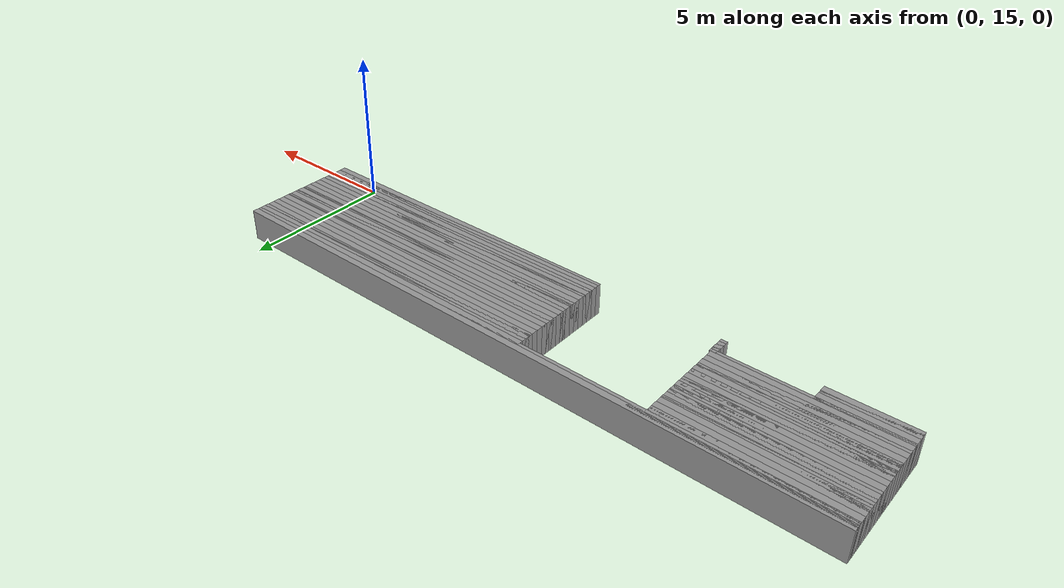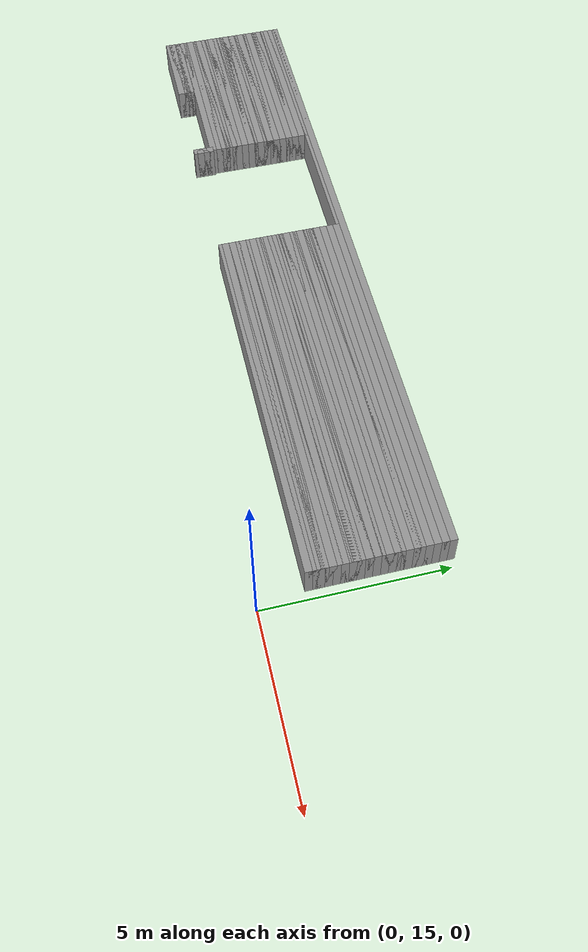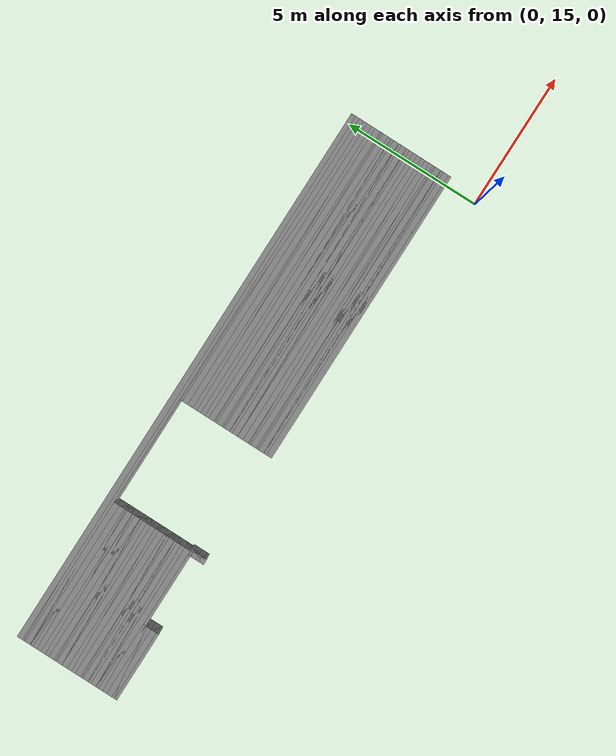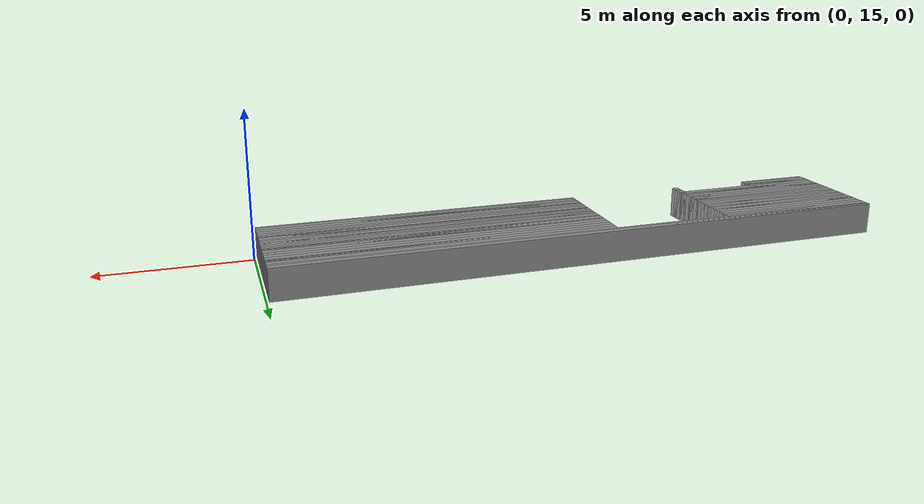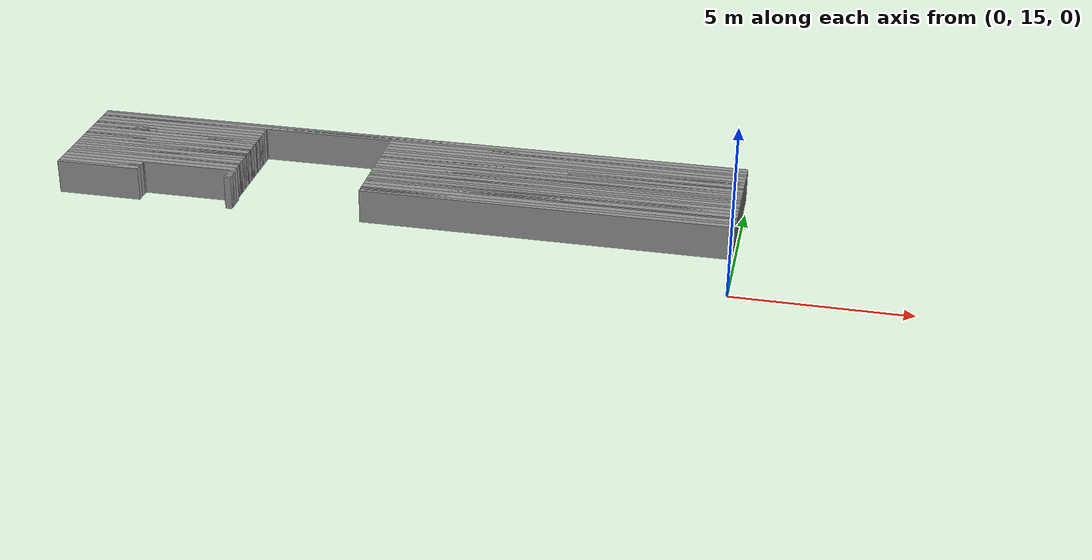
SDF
<sdf version="1.6">
 <world name="GridMap">
  <model name="GridMap">
   <link name="Wall_(53.5,163.0)">
    <collision name="Wall_(53.5,163.0)_Collision">
     <geometry><box><size>10.7 0.2 1.0</size></box></geometry>
     <pose>-5.35 16.3 0.5 0 -0 0</pose>
    </collision>
    <visual name="Wall_(53.5,163.0)_Visual">
     <geometry><box><size>10.7 0.2 1.0</size></box></geometry>
     <pose>-5.35 16.3 0.5 0 -0 0</pose>
     <material>
      <script><uri>file://media/materials/scripts/gazebo.material</uri><name>Gazebo/Grey</name></script>
      <ambient>1 1 1 1</ambient>
     </material>
     <meta><layer>0</layer></meta>
    </visual>
    <pose>0 0 0.5 0 -0 0</pose>
   </link>
   <link name="Wall_(146.5,163.0)">
    <collision name="Wall_(146.5,163.0)_Collision">
     <geometry><box><size>0.2 0.2 1.0</size></box></geometry>
     <pose>-14.65 16.3 0.5 0 -0 0</pose>
    </collision>
    <visual name="Wall_(146.5,163.0)_Visual">
     <geometry><box><size>0.2 0.2 1.0</size></box></geometry>
     <pose>-14.65 16.3 0.5 0 -0 0</pose>
     <material>
      <script><uri>file://media/materials/scripts/gazebo.material</uri><name>Gazebo/Grey</name></script>
      <ambient>1 1 1 1</ambient>
     </material>
     <meta><layer>0</layer></meta>
    </visual>
    <pose>0 0 0.5 0 -0 0</pose>
   </link>
   <link name="Wall_(186.5,163.0)">
    <collision name="Wall_(186.5,163.0)_Collision">
     <geometry><box><size>2.5 0.2 1.0</size></box></geometry>
     <pose>-18.65 16.3 0.5 0 -0 0</pose>
    </collision>
    <visual name="Wall_(186.5,163.0)_Visual">
     <geometry><box><size>2.5 0.2 1.0</size></box></geometry>
     <pose>-18.65 16.3 0.5 0 -0 0</pose>
     <material>
      <script><uri>file://media/materials/scripts/gazebo.material</uri><name>Gazebo/Grey</name></script>
      <ambient>1 1 1 1</ambient>
     </material>
     <meta><layer>0</layer></meta>
    </visual>
    <pose>0 0 0.5 0 -0 0</pose>
   </link>
   <link name="Wall_(53.5,164.0)">
    <collision name="Wall_(53.5,164.0)_Collision">
     <geometry><box><size>10.7 0.2 1.0</size></box></geometry>
     <pose>-5.35 16.4 0.5 0 -0 0</pose>
    </collision>
    <visual name="Wall_(53.5,164.0)_Visual">
     <geometry><box><size>10.7 0.2 1.0</size></box></geometry>
     <pose>-5.35 16.4 0.5 0 -0 0</pose>
     <material>
      <script><uri>file://media/materials/scripts/gazebo.material</uri><name>Gazebo/Grey</name></script>
      <ambient>1 1 1 1</ambient>
     </material>
     <meta><layer>0</layer></meta>
    </visual>
    <pose>0 0 0.5 0 -0 0</pose>
   </link>
   <link name="Wall_(146.5,164.0)">
    <collision name="Wall_(146.5,164.0)_Collision">
     <geometry><box><size>0.2 0.2 1.0</size></box></geometry>
     <pose>-14.65 16.4 0.5 0 -0 0</pose>
    </collision>
    <visual name="Wall_(146.5,164.0)_Visual">
     <geometry><box><size>0.2 0.2 1.0</size></box></geometry>
     <pose>-14.65 16.4 0.5 0 -0 0</pose>
     <material>
      <script><uri>file://media/materials/scripts/gazebo.material</uri><name>Gazebo/Grey</name></script>
      <ambient>1 1 1 1</ambient>
     </material>
     <meta><layer>0</layer></meta>
    </visual>
    <pose>0 0 0.5 0 -0 0</pose>
   </link>
   <link name="Wall_(186.5,164.0)">
    <collision name="Wall_(186.5,164.0)_Collision">
     <geometry><box><size>2.5 0.2 1.0</size></box></geometry>
     <pose>-18.65 16.4 0.5 0 -0 0</pose>
    </collision>
    <visual name="Wall_(186.5,164.0)_Visual">
     <geometry><box><size>2.5 0.2 1.0</size></box></geometry>
     <pose>-18.65 16.4 0.5 0 -0 0</pose>
     <material>
      <script><uri>file://media/materials/scripts/gazebo.material</uri><name>Gazebo/Grey</name></script>
      <ambient>1 1 1 1</ambient>
     </material>
     <meta><layer>0</layer></meta>
    </visual>
    <pose>0 0 0.5 0 -0 0</pose>
   </link>
   <link name="Wall_(53.5,165.0)">
    <collision name="Wall_(53.5,165.0)_Collision">
     <geometry><box><size>10.7 0.2 1.0</size></box></geometry>
     <pose>-5.35 16.5 0.5 0 -0 0</pose>
    </collision>
    <visual name="Wall_(53.5,165.0)_Visual">
     <geometry><box><size>10.7 0.2 1.0</size></box></geometry>
     <pose>-5.35 16.5 0.5 0 -0 0</pose>
     <material>
      <script><uri>file://media/materials/scripts/gazebo.material</uri><name>Gazebo/Grey</name></script>
      <ambient>1 1 1 1</ambient>
     </material>
     <meta><layer>0</layer></meta>
    </visual>
    <pose>0 0 0.5 0 -0 0</pose>
   </link>
   <link name="Wall_(146.5,165.0)">
    <collision name="Wall_(146.5,165.0)_Collision">
     <geometry><box><size>0.2 0.2 1.0</size></box></geometry>
     <pose>-14.65 16.5 0.5 0 -0 0</pose>
    </collision>
    <visual name="Wall_(146.5,165.0)_Visual">
     <geometry><box><size>0.2 0.2 1.0</size></box></geometry>
     <pose>-14.65 16.5 0.5 0 -0 0</pose>
     <material>
      <script><uri>file://media/materials/scripts/gazebo.material</uri><name>Gazebo/Grey</name></script>
      <ambient>1 1 1 1</ambient>
     </material>
     <meta><layer>0</layer></meta>
    </visual>
    <pose>0 0 0.5 0 -0 0</pose>
   </link>
   <link name="Wall_(186.5,165.0)">
    <collision name="Wall_(186.5,165.0)_Collision">
     <geometry><box><size>2.5 0.2 1.0</size></box></geometry>
     <pose>-18.65 16.5 0.5 0 -0 0</pose>
    </collision>
    <visual name="Wall_(186.5,165.0)_Visual">
     <geometry><box><size>2.5 0.2 1.0</size></box></geometry>
     <pose>-18.65 16.5 0.5 0 -0 0</pose>
     <material>
      <script><uri>file://media/materials/scripts/gazebo.material</uri><name>Gazebo/Grey</name></script>
      <ambient>1 1 1 1</ambient>
     </material>
     <meta><layer>0</layer></meta>
    </visual>
    <pose>0 0 0.5 0 -0 0</pose>
   </link>
   <link name="Wall_(53.5,166.0)">
    <collision name="Wall_(53.5,166.0)_Collision">
     <geometry><box><size>10.7 0.2 1.0</size></box></geometry>
     <pose>-5.35 16.6 0.5 0 -0 0</pose>
    </collision>
    <visual name="Wall_(53.5,166.0)_Visual">
     <geometry><box><size>10.7 0.2 1.0</size></box></geometry>
     <pose>-5.35 16.6 0.5 0 -0 0</pose>
     <material>
      <script><uri>file://media/materials/scripts/gazebo.material</uri><name>Gazebo/Grey</name></script>
      <ambient>1 1 1 1</ambient>
     </material>
     <meta><layer>0</layer></meta>
    </visual>
    <pose>0 0 0.5 0 -0 0</pose>
   </link>
   <link name="Wall_(146.5,166.0)">
    <collision name="Wall_(146.5,166.0)_Collision">
     <geometry><box><size>0.2 0.2 1.0</size></box></geometry>
     <pose>-14.65 16.6 0.5 0 -0 0</pose>
    </collision>
    <visual name="Wall_(146.5,166.0)_Visual">
     <geometry><box><size>0.2 0.2 1.0</size></box></geometry>
     <pose>-14.65 16.6 0.5 0 -0 0</pose>
     <material>
      <script><uri>file://media/materials/scripts/gazebo.material</uri><name>Gazebo/Grey</name></script>
      <ambient>1 1 1 1</ambient>
     </material>
     <meta><layer>0</layer></meta>
    </visual>
    <pose>0 0 0.5 0 -0 0</pose>
   </link>
   <link name="Wall_(186.5,166.0)">
    <collision name="Wall_(186.5,166.0)_Collision">
     <geometry><box><size>2.5 0.2 1.0</size></box></geometry>
     <pose>-18.65 16.6 0.5 0 -0 0</pose>
    </collision>
    <visual name="Wall_(186.5,166.0)_Visual">
     <geometry><box><size>2.5 0.2 1.0</size></box></geometry>
     <pose>-18.65 16.6 0.5 0 -0 0</pose>
     <material>
      <script><uri>file://media/materials/scripts/gazebo.material</uri><name>Gazebo/Grey</name></script>
      <ambient>1 1 1 1</ambient>
     </material>
     <meta><layer>0</layer></meta>
    </visual>
    <pose>0 0 0.5 0 -0 0</pose>
   </link>
   <link name="Wall_(53.5,167.0)">
    <collision name="Wall_(53.5,167.0)_Collision">
     <geometry><box><size>10.7 0.2 1.0</size></box></geometry>
     <pose>-5.35 16.7 0.5 0 -0 0</pose>
    </collision>
    <visual name="Wall_(53.5,167.0)_Visual">
     <geometry><box><size>10.7 0.2 1.0</size></box></geometry>
     <pose>-5.35 16.7 0.5 0 -0 0</pose>
     <material>
      <script><uri>file://media/materials/scripts/gazebo.material</uri><name>Gazebo/Grey</name></script>
      <ambient>1 1 1 1</ambient>
     </material>
     <meta><layer>0</layer></meta>
    </visual>
    <pose>0 0 0.5 0 -0 0</pose>
   </link>
   <link name="Wall_(146.5,167.0)">
    <collision name="Wall_(146.5,167.0)_Collision">
     <geometry><box><size>0.2 0.2 1.0</size></box></geometry>
     <pose>-14.65 16.7 0.5 0 -0 0</pose>
    </collision>
    <visual name="Wall_(146.5,167.0)_Visual">
     <geometry><box><size>0.2 0.2 1.0</size></box></geometry>
     <pose>-14.65 16.7 0.5 0 -0 0</pose>
     <material>
      <script><uri>file://media/materials/scripts/gazebo.material</uri><name>Gazebo/Grey</name></script>
      <ambient>1 1 1 1</ambient>
     </material>
     <meta><layer>0</layer></meta>
    </visual>
    <pose>0 0 0.5 0 -0 0</pose>
   </link>
   <link name="Wall_(186.5,167.0)">
    <collision name="Wall_(186.5,167.0)_Collision">
     <geometry><box><size>2.5 0.2 1.0</size></box></geometry>
     <pose>-18.65 16.7 0.5 0 -0 0</pose>
    </collision>
    <visual name="Wall_(186.5,167.0)_Visual">
     <geometry><box><size>2.5 0.2 1.0</size></box></geometry>
     <pose>-18.65 16.7 0.5 0 -0 0</pose>
     <material>
      <script><uri>file://media/materials/scripts/gazebo.material</uri><name>Gazebo/Grey</name></script>
      <ambient>1 1 1 1</ambient>
     </material>
     <meta><layer>0</layer></meta>
    </visual>
    <pose>0 0 0.5 0 -0 0</pose>
   </link>
   <link name="Wall_(53.5,168.0)">
    <collision name="Wall_(53.5,168.0)_Collision">
     <geometry><box><size>10.7 0.2 1.0</size></box></geometry>
     <pose>-5.35 16.8 0.5 0 -0 0</pose>
    </collision>
    <visual name="Wall_(53.5,168.0)_Visual">
     <geometry><box><size>10.7 0.2 1.0</size></box></geometry>
     <pose>-5.35 16.8 0.5 0 -0 0</pose>
     <material>
      <script><uri>file://media/materials/scripts/gazebo.material</uri><name>Gazebo/Grey</name></script>
      <ambient>1 1 1 1</ambient>
     </material>
     <meta><layer>0</layer></meta>
    </visual>
    <pose>0 0 0.5 0 -0 0</pose>
   </link>
   <link name="Wall_(172.5,168.0)">
    <collision name="Wall_(172.5,168.0)_Collision">
     <geometry><box><size>5.3 0.2 1.0</size></box></geometry>
     <pose>-17.25 16.8 0.5 0 -0 0</pose>
    </collision>
    <visual name="Wall_(172.5,168.0)_Visual">
     <geometry><box><size>5.3 0.2 1.0</size></box></geometry>
     <pose>-17.25 16.8 0.5 0 -0 0</pose>
     <material>
      <script><uri>file://media/materials/scripts/gazebo.material</uri><name>Gazebo/Grey</name></script>
      <ambient>1 1 1 1</ambient>
     </material>
     <meta><layer>0</layer></meta>
    </visual>
    <pose>0 0 0.5 0 -0 0</pose>
   </link>
   <link name="Wall_(53.5,169.0)">
    <collision name="Wall_(53.5,169.0)_Collision">
     <geometry><box><size>10.7 0.2 1.0</size></box></geometry>
     <pose>-5.35 16.9 0.5 0 -0 0</pose>
    </collision>
    <visual name="Wall_(53.5,169.0)_Visual">
     <geometry><box><size>10.7 0.2 1.0</size></box></geometry>
     <pose>-5.35 16.9 0.5 0 -0 0</pose>
     <material>
      <script><uri>file://media/materials/scripts/gazebo.material</uri><name>Gazebo/Grey</name></script>
      <ambient>1 1 1 1</ambient>
     </material>
     <meta><layer>0</layer></meta>
    </visual>
    <pose>0 0 0.5 0 -0 0</pose>
   </link>
   <link name="Wall_(172.5,169.0)">
    <collision name="Wall_(172.5,169.0)_Collision">
     <geometry><box><size>5.3 0.2 1.0</size></box></geometry>
     <pose>-17.25 16.9 0.5 0 -0 0</pose>
    </collision>
    <visual name="Wall_(172.5,169.0)_Visual">
     <geometry><box><size>5.3 0.2 1.0</size></box></geometry>
     <pose>-17.25 16.9 0.5 0 -0 0</pose>
     <material>
      <script><uri>file://media/materials/scripts/gazebo.material</uri><name>Gazebo/Grey</name></script>
      <ambient>1 1 1 1</ambient>
     </material>
     <meta><layer>0</layer></meta>
    </visual>
    <pose>0 0 0.5 0 -0 0</pose>
   </link>
   <link name="Wall_(53.5,170.0)">
    <collision name="Wall_(53.5,170.0)_Collision">
     <geometry><box><size>10.7 0.2 1.0</size></box></geometry>
     <pose>-5.35 17.0 0.5 0 -0 0</pose>
    </collision>
    <visual name="Wall_(53.5,170.0)_Visual">
     <geometry><box><size>10.7 0.2 1.0</size></box></geometry>
     <pose>-5.35 17.0 0.5 0 -0 0</pose>
     <material>
      <script><uri>file://media/materials/scripts/gazebo.material</uri><name>Gazebo/Grey</name></script>
      <ambient>1 1 1 1</ambient>
     </material>
     <meta><layer>0</layer></meta>
    </visual>
    <pose>0 0 0.5 0 -0 0</pose>
   </link>
   <link name="Wall_(172.5,170.0)">
    <collision name="Wall_(172.5,170.0)_Collision">
     <geometry><box><size>5.3 0.2 1.0</size></box></geometry>
     <pose>-17.25 17.0 0.5 0 -0 0</pose>
    </collision>
    <visual name="Wall_(172.5,170.0)_Visual">
     <geometry><box><size>5.3 0.2 1.0</size></box></geometry>
     <pose>-17.25 17.0 0.5 0 -0 0</pose>
     <material>
      <script><uri>file://media/materials/scripts/gazebo.material</uri><name>Gazebo/Grey</name></script>
      <ambient>1 1 1 1</ambient>
     </material>
     <meta><layer>0</layer></meta>
    </visual>
    <pose>0 0 0.5 0 -0 0</pose>
   </link>
   <link name="Wall_(53.5,171.0)">
    <collision name="Wall_(53.5,171.0)_Collision">
     <geometry><box><size>10.7 0.2 1.0</size></box></geometry>
     <pose>-5.35 17.1 0.5 0 -0 0</pose>
    </collision>
    <visual name="Wall_(53.5,171.0)_Visual">
     <geometry><box><size>10.7 0.2 1.0</size></box></geometry>
     <pose>-5.35 17.1 0.5 0 -0 0</pose>
     <material>
      <script><uri>file://media/materials/scripts/gazebo.material</uri><name>Gazebo/Grey</name></script>
      <ambient>1 1 1 1</ambient>
     </material>
     <meta><layer>0</layer></meta>
    </visual>
    <pose>0 0 0.5 0 -0 0</pose>
   </link>
   <link name="Wall_(172.5,171.0)">
    <collision name="Wall_(172.5,171.0)_Collision">
     <geometry><box><size>5.3 0.2 1.0</size></box></geometry>
     <pose>-17.25 17.1 0.5 0 -0 0</pose>
    </collision>
    <visual name="Wall_(172.5,171.0)_Visual">
     <geometry><box><size>5.3 0.2 1.0</size></box></geometry>
     <pose>-17.25 17.1 0.5 0 -0 0</pose>
     <material>
      <script><uri>file://media/materials/scripts/gazebo.material</uri><name>Gazebo/Grey</name></script>
      <ambient>1 1 1 1</ambient>
     </material>
     <meta><layer>0</layer></meta>
    </visual>
    <pose>0 0 0.5 0 -0 0</pose>
   </link>
   <link name="Wall_(53.5,172.0)">
    <collision name="Wall_(53.5,172.0)_Collision">
     <geometry><box><size>10.7 0.2 1.0</size></box></geometry>
     <pose>-5.35 17.2 0.5 0 -0 0</pose>
    </collision>
    <visual name="Wall_(53.5,172.0)_Visual">
     <geometry><box><size>10.7 0.2 1.0</size></box></geometry>
     <pose>-5.35 17.2 0.5 0 -0 0</pose>
     <material>
      <script><uri>file://media/materials/scripts/gazebo.material</uri><name>Gazebo/Grey</name></script>
      <ambient>1 1 1 1</ambient>
     </material>
     <meta><layer>0</layer></meta>
    </visual>
    <pose>0 0 0.5 0 -0 0</pose>
   </link>
   <link name="Wall_(172.5,172.0)">
    <collision name="Wall_(172.5,172.0)_Collision">
     <geometry><box><size>5.3 0.2 1.0</size></box></geometry>
     <pose>-17.25 17.2 0.5 0 -0 0</pose>
    </collision>
    <visual name="Wall_(172.5,172.0)_Visual">
     <geometry><box><size>5.3 0.2 1.0</size></box></geometry>
     <pose>-17.25 17.2 0.5 0 -0 0</pose>
     <material>
      <script><uri>file://media/materials/scripts/gazebo.material</uri><name>Gazebo/Grey</name></script>
      <ambient>1 1 1 1</ambient>
     </material>
     <meta><layer>0</layer></meta>
    </visual>
    <pose>0 0 0.5 0 -0 0</pose>
   </link>
   <link name="Wall_(53.5,173.0)">
    <collision name="Wall_(53.5,173.0)_Collision">
     <geometry><box><size>10.7 0.2 1.0</size></box></geometry>
     <pose>-5.35 17.3 0.5 0 -0 0</pose>
    </collision>
    <visual name="Wall_(53.5,173.0)_Visual">
     <geometry><box><size>10.7 0.2 1.0</size></box></geometry>
     <pose>-5.35 17.3 0.5 0 -0 0</pose>
     <material>
      <script><uri>file://media/materials/scripts/gazebo.material</uri><name>Gazebo/Grey</name></script>
      <ambient>1 1 1 1</ambient>
     </material>
     <meta><layer>0</layer></meta>
    </visual>
    <pose>0 0 0.5 0 -0 0</pose>
   </link>
   <link name="Wall_(172.5,173.0)">
    <collision name="Wall_(172.5,173.0)_Collision">
     <geometry><box><size>5.3 0.2 1.0</size></box></geometry>
     <pose>-17.25 17.3 0.5 0 -0 0</pose>
    </collision>
    <visual name="Wall_(172.5,173.0)_Visual">
     <geometry><box><size>5.3 0.2 1.0</size></box></geometry>
     <pose>-17.25 17.3 0.5 0 -0 0</pose>
     <material>
      <script><uri>file://media/materials/scripts/gazebo.material</uri><name>Gazebo/Grey</name></script>
      <ambient>1 1 1 1</ambient>
     </material>
     <meta><layer>0</layer></meta>
    </visual>
    <pose>0 0 0.5 0 -0 0</pose>
   </link>
   <link name="Wall_(53.5,174.0)">
    <collision name="Wall_(53.5,174.0)_Collision">
     <geometry><box><size>10.7 0.2 1.0</size></box></geometry>
     <pose>-5.35 17.4 0.5 0 -0 0</pose>
    </collision>
    <visual name="Wall_(53.5,174.0)_Visual">
     <geometry><box><size>10.7 0.2 1.0</size></box></geometry>
     <pose>-5.35 17.4 0.5 0 -0 0</pose>
     <material>
      <script><uri>file://media/materials/scripts/gazebo.material</uri><name>Gazebo/Grey</name></script>
      <ambient>1 1 1 1</ambient>
     </material>
     <meta><layer>0</layer></meta>
    </visual>
    <pose>0 0 0.5 0 -0 0</pose>
   </link>
   <link name="Wall_(172.5,174.0)">
    <collision name="Wall_(172.5,174.0)_Collision">
     <geometry><box><size>5.3 0.2 1.0</size></box></geometry>
     <pose>-17.25 17.4 0.5 0 -0 0</pose>
    </collision>
    <visual name="Wall_(172.5,174.0)_Visual">
     <geometry><box><size>5.3 0.2 1.0</size></box></geometry>
     <pose>-17.25 17.4 0.5 0 -0 0</pose>
     <material>
      <script><uri>file://media/materials/scripts/gazebo.material</uri><name>Gazebo/Grey</name></script>
      <ambient>1 1 1 1</ambient>
     </material>
     <meta><layer>0</layer></meta>
    </visual>
    <pose>0 0 0.5 0 -0 0</pose>
   </link>
   <link name="Wall_(53.5,175.0)">
    <collision name="Wall_(53.5,175.0)_Collision">
     <geometry><box><size>10.7 0.2 1.0</size></box></geometry>
     <pose>-5.35 17.5 0.5 0 -0 0</pose>
    </collision>
    <visual name="Wall_(53.5,175.0)_Visual">
     <geometry><box><size>10.7 0.2 1.0</size></box></geometry>
     <pose>-5.35 17.5 0.5 0 -0 0</pose>
     <material>
      <script><uri>file://media/materials/scripts/gazebo.material</uri><name>Gazebo/Grey</name></script>
      <ambient>1 1 1 1</ambient>
     </material>
     <meta><layer>0</layer></meta>
    </visual>
    <pose>0 0 0.5 0 -0 0</pose>
   </link>
   <link name="Wall_(172.5,175.0)">
    <collision name="Wall_(172.5,175.0)_Collision">
     <geometry><box><size>5.3 0.2 1.0</size></box></geometry>
     <pose>-17.25 17.5 0.5 0 -0 0</pose>
    </collision>
    <visual name="Wall_(172.5,175.0)_Visual">
     <geometry><box><size>5.3 0.2 1.0</size></box></geometry>
     <pose>-17.25 17.5 0.5 0 -0 0</pose>
     <material>
      <script><uri>file://media/materials/scripts/gazebo.material</uri><name>Gazebo/Grey</name></script>
      <ambient>1 1 1 1</ambient>
     </material>
     <meta><layer>0</layer></meta>
    </visual>
    <pose>0 0 0.5 0 -0 0</pose>
   </link>
   <link name="Wall_(53.5,176.0)">
    <collision name="Wall_(53.5,176.0)_Collision">
     <geometry><box><size>10.7 0.2 1.0</size></box></geometry>
     <pose>-5.35 17.6 0.5 0 -0 0</pose>
    </collision>
    <visual name="Wall_(53.5,176.0)_Visual">
     <geometry><box><size>10.7 0.2 1.0</size></box></geometry>
     <pose>-5.35 17.6 0.5 0 -0 0</pose>
     <material>
      <script><uri>file://media/materials/scripts/gazebo.material</uri><name>Gazebo/Grey</name></script>
      <ambient>1 1 1 1</ambient>
     </material>
     <meta><layer>0</layer></meta>
    </visual>
    <pose>0 0 0.5 0 -0 0</pose>
   </link>
   <link name="Wall_(172.5,176.0)">
    <collision name="Wall_(172.5,176.0)_Collision">
     <geometry><box><size>5.3 0.2 1.0</size></box></geometry>
     <pose>-17.25 17.6 0.5 0 -0 0</pose>
    </collision>
    <visual name="Wall_(172.5,176.0)_Visual">
     <geometry><box><size>5.3 0.2 1.0</size></box></geometry>
     <pose>-17.25 17.6 0.5 0 -0 0</pose>
     <material>
      <script><uri>file://media/materials/scripts/gazebo.material</uri><name>Gazebo/Grey</name></script>
      <ambient>1 1 1 1</ambient>
     </material>
     <meta><layer>0</layer></meta>
    </visual>
    <pose>0 0 0.5 0 -0 0</pose>
   </link>
   <link name="Wall_(53.5,177.0)">
    <collision name="Wall_(53.5,177.0)_Collision">
     <geometry><box><size>10.7 0.2 1.0</size></box></geometry>
     <pose>-5.35 17.7 0.5 0 -0 0</pose>
    </collision>
    <visual name="Wall_(53.5,177.0)_Visual">
     <geometry><box><size>10.7 0.2 1.0</size></box></geometry>
     <pose>-5.35 17.7 0.5 0 -0 0</pose>
     <material>
      <script><uri>file://media/materials/scripts/gazebo.material</uri><name>Gazebo/Grey</name></script>
      <ambient>1 1 1 1</ambient>
     </material>
     <meta><layer>0</layer></meta>
    </visual>
    <pose>0 0 0.5 0 -0 0</pose>
   </link>
   <link name="Wall_(172.5,177.0)">
    <collision name="Wall_(172.5,177.0)_Collision">
     <geometry><box><size>5.3 0.2 1.0</size></box></geometry>
     <pose>-17.25 17.7 0.5 0 -0 0</pose>
    </collision>
    <visual name="Wall_(172.5,177.0)_Visual">
     <geometry><box><size>5.3 0.2 1.0</size></box></geometry>
     <pose>-17.25 17.7 0.5 0 -0 0</pose>
     <material>
      <script><uri>file://media/materials/scripts/gazebo.material</uri><name>Gazebo/Grey</name></script>
      <ambient>1 1 1 1</ambient>
     </material>
     <meta><layer>0</layer></meta>
    </visual>
    <pose>0 0 0.5 0 -0 0</pose>
   </link>
   <link name="Wall_(53.5,178.0)">
    <collision name="Wall_(53.5,178.0)_Collision">
     <geometry><box><size>10.7 0.2 1.0</size></box></geometry>
     <pose>-5.35 17.8 0.5 0 -0 0</pose>
    </collision>
    <visual name="Wall_(53.5,178.0)_Visual">
     <geometry><box><size>10.7 0.2 1.0</size></box></geometry>
     <pose>-5.35 17.8 0.5 0 -0 0</pose>
     <material>
      <script><uri>file://media/materials/scripts/gazebo.material</uri><name>Gazebo/Grey</name></script>
      <ambient>1 1 1 1</ambient>
     </material>
     <meta><layer>0</layer></meta>
    </visual>
    <pose>0 0 0.5 0 -0 0</pose>
   </link>
   <link name="Wall_(172.5,178.0)">
    <collision name="Wall_(172.5,178.0)_Collision">
     <geometry><box><size>5.3 0.2 1.0</size></box></geometry>
     <pose>-17.25 17.8 0.5 0 -0 0</pose>
    </collision>
    <visual name="Wall_(172.5,178.0)_Visual">
     <geometry><box><size>5.3 0.2 1.0</size></box></geometry>
     <pose>-17.25 17.8 0.5 0 -0 0</pose>
     <material>
      <script><uri>file://media/materials/scripts/gazebo.material</uri><name>Gazebo/Grey</name></script>
      <ambient>1 1 1 1</ambient>
     </material>
     <meta><layer>0</layer></meta>
    </visual>
    <pose>0 0 0.5 0 -0 0</pose>
   </link>
   <link name="Wall_(53.5,179.0)">
    <collision name="Wall_(53.5,179.0)_Collision">
     <geometry><box><size>10.7 0.2 1.0</size></box></geometry>
     <pose>-5.35 17.9 0.5 0 -0 0</pose>
    </collision>
    <visual name="Wall_(53.5,179.0)_Visual">
     <geometry><box><size>10.7 0.2 1.0</size></box></geometry>
     <pose>-5.35 17.9 0.5 0 -0 0</pose>
     <material>
      <script><uri>file://media/materials/scripts/gazebo.material</uri><name>Gazebo/Grey</name></script>
      <ambient>1 1 1 1</ambient>
     </material>
     <meta><layer>0</layer></meta>
    </visual>
    <pose>0 0 0.5 0 -0 0</pose>
   </link>
   <link name="Wall_(172.5,179.0)">
    <collision name="Wall_(172.5,179.0)_Collision">
     <geometry><box><size>5.3 0.2 1.0</size></box></geometry>
     <pose>-17.25 17.9 0.5 0 -0 0</pose>
    </collision>
    <visual name="Wall_(172.5,179.0)_Visual">
     <geometry><box><size>5.3 0.2 1.0</size></box></geometry>
     <pose>-17.25 17.9 0.5 0 -0 0</pose>
     <material>
      <script><uri>file://media/materials/scripts/gazebo.material</uri><name>Gazebo/Grey</name></script>
      <ambient>1 1 1 1</ambient>
     </material>
     <meta><layer>0</layer></meta>
    </visual>
    <pose>0 0 0.5 0 -0 0</pose>
   </link>
   <link name="Wall_(53.5,180.0)">
    <collision name="Wall_(53.5,180.0)_Collision">
     <geometry><box><size>10.7 0.2 1.0</size></box></geometry>
     <pose>-5.35 18.0 0.5 0 -0 0</pose>
    </collision>
    <visual name="Wall_(53.5,180.0)_Visual">
     <geometry><box><size>10.7 0.2 1.0</size></box></geometry>
     <pose>-5.35 18.0 0.5 0 -0 0</pose>
     <material>
      <script><uri>file://media/materials/scripts/gazebo.material</uri><name>Gazebo/Grey</name></script>
      <ambient>1 1 1 1</ambient>
     </material>
     <meta><layer>0</layer></meta>
    </visual>
    <pose>0 0 0.5 0 -0 0</pose>
   </link>
   <link name="Wall_(172.5,180.0)">
    <collision name="Wall_(172.5,180.0)_Collision">
     <geometry><box><size>5.3 0.2 1.0</size></box></geometry>
     <pose>-17.25 18.0 0.5 0 -0 0</pose>
    </collision>
    <visual name="Wall_(172.5,180.0)_Visual">
     <geometry><box><size>5.3 0.2 1.0</size></box></geometry>
     <pose>-17.25 18.0 0.5 0 -0 0</pose>
     <material>
      <script><uri>file://media/materials/scripts/gazebo.material</uri><name>Gazebo/Grey</name></script>
      <ambient>1 1 1 1</ambient>
     </material>
     <meta><layer>0</layer></meta>
    </visual>
    <pose>0 0 0.5 0 -0 0</pose>
   </link>
   <link name="Wall_(53.5,181.0)">
    <collision name="Wall_(53.5,181.0)_Collision">
     <geometry><box><size>10.7 0.2 1.0</size></box></geometry>
     <pose>-5.35 18.1 0.5 0 -0 0</pose>
    </collision>
    <visual name="Wall_(53.5,181.0)_Visual">
     <geometry><box><size>10.7 0.2 1.0</size></box></geometry>
     <pose>-5.35 18.1 0.5 0 -0 0</pose>
     <material>
      <script><uri>file://media/materials/scripts/gazebo.material</uri><name>Gazebo/Grey</name></script>
      <ambient>1 1 1 1</ambient>
     </material>
     <meta><layer>0</layer></meta>
    </visual>
    <pose>0 0 0.5 0 -0 0</pose>
   </link>
   <link name="Wall_(172.5,181.0)">
    <collision name="Wall_(172.5,181.0)_Collision">
     <geometry><box><size>5.3 0.2 1.0</size></box></geometry>
     <pose>-17.25 18.1 0.5 0 -0 0</pose>
    </collision>
    <visual name="Wall_(172.5,181.0)_Visual">
     <geometry><box><size>5.3 0.2 1.0</size></box></geometry>
     <pose>-17.25 18.1 0.5 0 -0 0</pose>
     <material>
      <script><uri>file://media/materials/scripts/gazebo.material</uri><name>Gazebo/Grey</name></script>
      <ambient>1 1 1 1</ambient>
     </material>
     <meta><layer>0</layer></meta>
    </visual>
    <pose>0 0 0.5 0 -0 0</pose>
   </link>
   <link name="Wall_(53.5,182.0)">
    <collision name="Wall_(53.5,182.0)_Collision">
     <geometry><box><size>10.7 0.2 1.0</size></box></geometry>
     <pose>-5.35 18.2 0.5 0 -0 0</pose>
    </collision>
    <visual name="Wall_(53.5,182.0)_Visual">
     <geometry><box><size>10.7 0.2 1.0</size></box></geometry>
     <pose>-5.35 18.2 0.5 0 -0 0</pose>
     <material>
      <script><uri>file://media/materials/scripts/gazebo.material</uri><name>Gazebo/Grey</name></script>
      <ambient>1 1 1 1</ambient>
     </material>
     <meta><layer>0</layer></meta>
    </visual>
    <pose>0 0 0.5 0 -0 0</pose>
   </link>
   <link name="Wall_(172.5,182.0)">
    <collision name="Wall_(172.5,182.0)_Collision">
     <geometry><box><size>5.3 0.2 1.0</size></box></geometry>
     <pose>-17.25 18.2 0.5 0 -0 0</pose>
    </collision>
    <visual name="Wall_(172.5,182.0)_Visual">
     <geometry><box><size>5.3 0.2 1.0</size></box></geometry>
     <pose>-17.25 18.2 0.5 0 -0 0</pose>
     <material>
      <script><uri>file://media/materials/scripts/gazebo.material</uri><name>Gazebo/Grey</name></script>
      <ambient>1 1 1 1</ambient>
     </material>
     <meta><layer>0</layer></meta>
    </visual>
    <pose>0 0 0.5 0 -0 0</pose>
   </link>
   <link name="Wall_(53.5,183.0)">
    <collision name="Wall_(53.5,183.0)_Collision">
     <geometry><box><size>10.7 0.2 1.0</size></box></geometry>
     <pose>-5.35 18.3 0.5 0 -0 0</pose>
    </collision>
    <visual name="Wall_(53.5,183.0)_Visual">
     <geometry><box><size>10.7 0.2 1.0</size></box></geometry>
     <pose>-5.35 18.3 0.5 0 -0 0</pose>
     <material>
      <script><uri>file://media/materials/scripts/gazebo.material</uri><name>Gazebo/Grey</name></script>
      <ambient>1 1 1 1</ambient>
     </material>
     <meta><layer>0</layer></meta>
    </visual>
    <pose>0 0 0.5 0 -0 0</pose>
   </link>
   <link name="Wall_(172.5,183.0)">
    <collision name="Wall_(172.5,183.0)_Collision">
     <geometry><box><size>5.3 0.2 1.0</size></box></geometry>
     <pose>-17.25 18.3 0.5 0 -0 0</pose>
    </collision>
    <visual name="Wall_(172.5,183.0)_Visual">
     <geometry><box><size>5.3 0.2 1.0</size></box></geometry>
     <pose>-17.25 18.3 0.5 0 -0 0</pose>
     <material>
      <script><uri>file://media/materials/scripts/gazebo.material</uri><name>Gazebo/Grey</name></script>
      <ambient>1 1 1 1</ambient>
     </material>
     <meta><layer>0</layer></meta>
    </visual>
    <pose>0 0 0.5 0 -0 0</pose>
   </link>
   <link name="Wall_(53.5,184.0)">
    <collision name="Wall_(53.5,184.0)_Collision">
     <geometry><box><size>10.7 0.2 1.0</size></box></geometry>
     <pose>-5.35 18.4 0.5 0 -0 0</pose>
    </collision>
    <visual name="Wall_(53.5,184.0)_Visual">
     <geometry><box><size>10.7 0.2 1.0</size></box></geometry>
     <pose>-5.35 18.4 0.5 0 -0 0</pose>
     <material>
      <script><uri>file://media/materials/scripts/gazebo.material</uri><name>Gazebo/Grey</name></script>
      <ambient>1 1 1 1</ambient>
     </material>
     <meta><layer>0</layer></meta>
    </visual>
    <pose>0 0 0.5 0 -0 0</pose>
   </link>
   <link name="Wall_(172.5,184.0)">
    <collision name="Wall_(172.5,184.0)_Collision">
     <geometry><box><size>5.3 0.2 1.0</size></box></geometry>
     <pose>-17.25 18.4 0.5 0 -0 0</pose>
    </collision>
    <visual name="Wall_(172.5,184.0)_Visual">
     <geometry><box><size>5.3 0.2 1.0</size></box></geometry>
     <pose>-17.25 18.4 0.5 0 -0 0</pose>
     <material>
      <script><uri>file://media/materials/scripts/gazebo.material</uri><name>Gazebo/Grey</name></script>
      <ambient>1 1 1 1</ambient>
     </material>
     <meta><layer>0</layer></meta>
    </visual>
    <pose>0 0 0.5 0 -0 0</pose>
   </link>
   <link name="Wall_(53.5,185.0)">
    <collision name="Wall_(53.5,185.0)_Collision">
     <geometry><box><size>10.7 0.2 1.0</size></box></geometry>
     <pose>-5.35 18.5 0.5 0 -0 0</pose>
    </collision>
    <visual name="Wall_(53.5,185.0)_Visual">
     <geometry><box><size>10.7 0.2 1.0</size></box></geometry>
     <pose>-5.35 18.5 0.5 0 -0 0</pose>
     <material>
      <script><uri>file://media/materials/scripts/gazebo.material</uri><name>Gazebo/Grey</name></script>
      <ambient>1 1 1 1</ambient>
     </material>
     <meta><layer>0</layer></meta>
    </visual>
    <pose>0 0 0.5 0 -0 0</pose>
   </link>
   <link name="Wall_(172.5,185.0)">
    <collision name="Wall_(172.5,185.0)_Collision">
     <geometry><box><size>5.3 0.2 1.0</size></box></geometry>
     <pose>-17.25 18.5 0.5 0 -0 0</pose>
    </collision>
    <visual name="Wall_(172.5,185.0)_Visual">
     <geometry><box><size>5.3 0.2 1.0</size></box></geometry>
     <pose>-17.25 18.5 0.5 0 -0 0</pose>
     <material>
      <script><uri>file://media/materials/scripts/gazebo.material</uri><name>Gazebo/Grey</name></script>
      <ambient>1 1 1 1</ambient>
     </material>
     <meta><layer>0</layer></meta>
    </visual>
    <pose>0 0 0.5 0 -0 0</pose>
   </link>
   <link name="Wall_(53.5,186.0)">
    <collision name="Wall_(53.5,186.0)_Collision">
     <geometry><box><size>10.7 0.2 1.0</size></box></geometry>
     <pose>-5.35 18.6 0.5 0 -0 0</pose>
    </collision>
    <visual name="Wall_(53.5,186.0)_Visual">
     <geometry><box><size>10.7 0.2 1.0</size></box></geometry>
     <pose>-5.35 18.6 0.5 0 -0 0</pose>
     <material>
      <script><uri>file://media/materials/scripts/gazebo.material</uri><name>Gazebo/Grey</name></script>
      <ambient>1 1 1 1</ambient>
     </material>
     <meta><layer>0</layer></meta>
    </visual>
    <pose>0 0 0.5 0 -0 0</pose>
   </link>
   <link name="Wall_(172.5,186.0)">
    <collision name="Wall_(172.5,186.0)_Collision">
     <geometry><box><size>5.3 0.2 1.0</size></box></geometry>
     <pose>-17.25 18.6 0.5 0 -0 0</pose>
    </collision>
    <visual name="Wall_(172.5,186.0)_Visual">
     <geometry><box><size>5.3 0.2 1.0</size></box></geometry>
     <pose>-17.25 18.6 0.5 0 -0 0</pose>
     <material>
      <script><uri>file://media/materials/scripts/gazebo.material</uri><name>Gazebo/Grey</name></script>
      <ambient>1 1 1 1</ambient>
     </material>
     <meta><layer>0</layer></meta>
    </visual>
    <pose>0 0 0.5 0 -0 0</pose>
   </link>
   <link name="Wall_(53.5,187.0)">
    <collision name="Wall_(53.5,187.0)_Collision">
     <geometry><box><size>10.7 0.2 1.0</size></box></geometry>
     <pose>-5.35 18.7 0.5 0 -0 0</pose>
    </collision>
    <visual name="Wall_(53.5,187.0)_Visual">
     <geometry><box><size>10.7 0.2 1.0</size></box></geometry>
     <pose>-5.35 18.7 0.5 0 -0 0</pose>
     <material>
      <script><uri>file://media/materials/scripts/gazebo.material</uri><name>Gazebo/Grey</name></script>
      <ambient>1 1 1 1</ambient>
     </material>
     <meta><layer>0</layer></meta>
    </visual>
    <pose>0 0 0.5 0 -0 0</pose>
   </link>
   <link name="Wall_(172.5,187.0)">
    <collision name="Wall_(172.5,187.0)_Collision">
     <geometry><box><size>5.3 0.2 1.0</size></box></geometry>
     <pose>-17.25 18.7 0.5 0 -0 0</pose>
    </collision>
    <visual name="Wall_(172.5,187.0)_Visual">
     <geometry><box><size>5.3 0.2 1.0</size></box></geometry>
     <pose>-17.25 18.7 0.5 0 -0 0</pose>
     <material>
      <script><uri>file://media/materials/scripts/gazebo.material</uri><name>Gazebo/Grey</name></script>
      <ambient>1 1 1 1</ambient>
     </material>
     <meta><layer>0</layer></meta>
    </visual>
    <pose>0 0 0.5 0 -0 0</pose>
   </link>
   <link name="Wall_(53.5,188.0)">
    <collision name="Wall_(53.5,188.0)_Collision">
     <geometry><box><size>10.7 0.2 1.0</size></box></geometry>
     <pose>-5.35 18.8 0.5 0 -0 0</pose>
    </collision>
    <visual name="Wall_(53.5,188.0)_Visual">
     <geometry><box><size>10.7 0.2 1.0</size></box></geometry>
     <pose>-5.35 18.8 0.5 0 -0 0</pose>
     <material>
      <script><uri>file://media/materials/scripts/gazebo.material</uri><name>Gazebo/Grey</name></script>
      <ambient>1 1 1 1</ambient>
     </material>
     <meta><layer>0</layer></meta>
    </visual>
    <pose>0 0 0.5 0 -0 0</pose>
   </link>
   <link name="Wall_(172.5,188.0)">
    <collision name="Wall_(172.5,188.0)_Collision">
     <geometry><box><size>5.3 0.2 1.0</size></box></geometry>
     <pose>-17.25 18.8 0.5 0 -0 0</pose>
    </collision>
    <visual name="Wall_(172.5,188.0)_Visual">
     <geometry><box><size>5.3 0.2 1.0</size></box></geometry>
     <pose>-17.25 18.8 0.5 0 -0 0</pose>
     <material>
      <script><uri>file://media/materials/scripts/gazebo.material</uri><name>Gazebo/Grey</name></script>
      <ambient>1 1 1 1</ambient>
     </material>
     <meta><layer>0</layer></meta>
    </visual>
    <pose>0 0 0.5 0 -0 0</pose>
   </link>
   <link name="Wall_(53.5,189.0)">
    <collision name="Wall_(53.5,189.0)_Collision">
     <geometry><box><size>10.7 0.2 1.0</size></box></geometry>
     <pose>-5.35 18.9 0.5 0 -0 0</pose>
    </collision>
    <visual name="Wall_(53.5,189.0)_Visual">
     <geometry><box><size>10.7 0.2 1.0</size></box></geometry>
     <pose>-5.35 18.9 0.5 0 -0 0</pose>
     <material>
      <script><uri>file://media/materials/scripts/gazebo.material</uri><name>Gazebo/Grey</name></script>
      <ambient>1 1 1 1</ambient>
     </material>
     <meta><layer>0</layer></meta>
    </visual>
    <pose>0 0 0.5 0 -0 0</pose>
   </link>
   <link name="Wall_(172.5,189.0)">
    <collision name="Wall_(172.5,189.0)_Collision">
     <geometry><box><size>5.3 0.2 1.0</size></box></geometry>
     <pose>-17.25 18.9 0.5 0 -0 0</pose>
    </collision>
    <visual name="Wall_(172.5,189.0)_Visual">
     <geometry><box><size>5.3 0.2 1.0</size></box></geometry>
     <pose>-17.25 18.9 0.5 0 -0 0</pose>
     <material>
      <script><uri>file://media/materials/scripts/gazebo.material</uri><name>Gazebo/Grey</name></script>
      <ambient>1 1 1 1</ambient>
     </material>
     <meta><layer>0</layer></meta>
    </visual>
    <pose>0 0 0.5 0 -0 0</pose>
   </link>
   <link name="Wall_(53.5,190.0)">
    <collision name="Wall_(53.5,190.0)_Collision">
     <geometry><box><size>10.7 0.2 1.0</size></box></geometry>
     <pose>-5.35 19.0 0.5 0 -0 0</pose>
    </collision>
    <visual name="Wall_(53.5,190.0)_Visual">
     <geometry><box><size>10.7 0.2 1.0</size></box></geometry>
     <pose>-5.35 19.0 0.5 0 -0 0</pose>
     <material>
      <script><uri>file://media/materials/scripts/gazebo.material</uri><name>Gazebo/Grey</name></script>
      <ambient>1 1 1 1</ambient>
     </material>
     <meta><layer>0</layer></meta>
    </visual>
    <pose>0 0 0.5 0 -0 0</pose>
   </link>
   <link name="Wall_(172.5,190.0)">
    <collision name="Wall_(172.5,190.0)_Collision">
     <geometry><box><size>5.3 0.2 1.0</size></box></geometry>
     <pose>-17.25 19.0 0.5 0 -0 0</pose>
    </collision>
    <visual name="Wall_(172.5,190.0)_Visual">
     <geometry><box><size>5.3 0.2 1.0</size></box></geometry>
     <pose>-17.25 19.0 0.5 0 -0 0</pose>
     <material>
      <script><uri>file://media/materials/scripts/gazebo.material</uri><name>Gazebo/Grey</name></script>
      <ambient>1 1 1 1</ambient>
     </material>
     <meta><layer>0</layer></meta>
    </visual>
    <pose>0 0 0.5 0 -0 0</pose>
   </link>
   <link name="Wall_(53.5,191.0)">
    <collision name="Wall_(53.5,191.0)_Collision">
     <geometry><box><size>10.7 0.2 1.0</size></box></geometry>
     <pose>-5.35 19.1 0.5 0 -0 0</pose>
    </collision>
    <visual name="Wall_(53.5,191.0)_Visual">
     <geometry><box><size>10.7 0.2 1.0</size></box></geometry>
     <pose>-5.35 19.1 0.5 0 -0 0</pose>
     <material>
      <script><uri>file://media/materials/scripts/gazebo.material</uri><name>Gazebo/Grey</name></script>
      <ambient>1 1 1 1</ambient>
     </material>
     <meta><layer>0</layer></meta>
    </visual>
    <pose>0 0 0.5 0 -0 0</pose>
   </link>
   <link name="Wall_(172.5,191.0)">
    <collision name="Wall_(172.5,191.0)_Collision">
     <geometry><box><size>5.3 0.2 1.0</size></box></geometry>
     <pose>-17.25 19.1 0.5 0 -0 0</pose>
    </collision>
    <visual name="Wall_(172.5,191.0)_Visual">
     <geometry><box><size>5.3 0.2 1.0</size></box></geometry>
     <pose>-17.25 19.1 0.5 0 -0 0</pose>
     <material>
      <script><uri>file://media/materials/scripts/gazebo.material</uri><name>Gazebo/Grey</name></script>
      <ambient>1 1 1 1</ambient>
     </material>
     <meta><layer>0</layer></meta>
    </visual>
    <pose>0 0 0.5 0 -0 0</pose>
   </link>
   <link name="Wall_(53.5,192.0)">
    <collision name="Wall_(53.5,192.0)_Collision">
     <geometry><box><size>10.7 0.2 1.0</size></box></geometry>
     <pose>-5.35 19.2 0.5 0 -0 0</pose>
    </collision>
    <visual name="Wall_(53.5,192.0)_Visual">
     <geometry><box><size>10.7 0.2 1.0</size></box></geometry>
     <pose>-5.35 19.2 0.5 0 -0 0</pose>
     <material>
      <script><uri>file://media/materials/scripts/gazebo.material</uri><name>Gazebo/Grey</name></script>
      <ambient>1 1 1 1</ambient>
     </material>
     <meta><layer>0</layer></meta>
    </visual>
    <pose>0 0 0.5 0 -0 0</pose>
   </link>
   <link name="Wall_(172.5,192.0)">
    <collision name="Wall_(172.5,192.0)_Collision">
     <geometry><box><size>5.3 0.2 1.0</size></box></geometry>
     <pose>-17.25 19.2 0.5 0 -0 0</pose>
    </collision>
    <visual name="Wall_(172.5,192.0)_Visual">
     <geometry><box><size>5.3 0.2 1.0</size></box></geometry>
     <pose>-17.25 19.2 0.5 0 -0 0</pose>
     <material>
      <script><uri>file://media/materials/scripts/gazebo.material</uri><name>Gazebo/Grey</name></script>
      <ambient>1 1 1 1</ambient>
     </material>
     <meta><layer>0</layer></meta>
    </visual>
    <pose>0 0 0.5 0 -0 0</pose>
   </link>
   <link name="Wall_(53.5,193.0)">
    <collision name="Wall_(53.5,193.0)_Collision">
     <geometry><box><size>10.7 0.2 1.0</size></box></geometry>
     <pose>-5.35 19.3 0.5 0 -0 0</pose>
    </collision>
    <visual name="Wall_(53.5,193.0)_Visual">
     <geometry><box><size>10.7 0.2 1.0</size></box></geometry>
     <pose>-5.35 19.3 0.5 0 -0 0</pose>
     <material>
      <script><uri>file://media/materials/scripts/gazebo.material</uri><name>Gazebo/Grey</name></script>
      <ambient>1 1 1 1</ambient>
     </material>
     <meta><layer>0</layer></meta>
    </visual>
    <pose>0 0 0.5 0 -0 0</pose>
   </link>
   <link name="Wall_(172.5,193.0)">
    <collision name="Wall_(172.5,193.0)_Collision">
     <geometry><box><size>5.3 0.2 1.0</size></box></geometry>
     <pose>-17.25 19.3 0.5 0 -0 0</pose>
    </collision>
    <visual name="Wall_(172.5,193.0)_Visual">
     <geometry><box><size>5.3 0.2 1.0</size></box></geometry>
     <pose>-17.25 19.3 0.5 0 -0 0</pose>
     <material>
      <script><uri>file://media/materials/scripts/gazebo.material</uri><name>Gazebo/Grey</name></script>
      <ambient>1 1 1 1</ambient>
     </material>
     <meta><layer>0</layer></meta>
    </visual>
    <pose>0 0 0.5 0 -0 0</pose>
   </link>
   <link name="Wall_(53.5,194.0)">
    <collision name="Wall_(53.5,194.0)_Collision">
     <geometry><box><size>10.7 0.2 1.0</size></box></geometry>
     <pose>-5.35 19.4 0.5 0 -0 0</pose>
    </collision>
    <visual name="Wall_(53.5,194.0)_Visual">
     <geometry><box><size>10.7 0.2 1.0</size></box></geometry>
     <pose>-5.35 19.4 0.5 0 -0 0</pose>
     <material>
      <script><uri>file://media/materials/scripts/gazebo.material</uri><name>Gazebo/Grey</name></script>
      <ambient>1 1 1 1</ambient>
     </material>
     <meta><layer>0</layer></meta>
    </visual>
    <pose>0 0 0.5 0 -0 0</pose>
   </link>
   <link name="Wall_(172.5,194.0)">
    <collision name="Wall_(172.5,194.0)_Collision">
     <geometry><box><size>5.3 0.2 1.0</size></box></geometry>
     <pose>-17.25 19.4 0.5 0 -0 0</pose>
    </collision>
    <visual name="Wall_(172.5,194.0)_Visual">
     <geometry><box><size>5.3 0.2 1.0</size></box></geometry>
     <pose>-17.25 19.4 0.5 0 -0 0</pose>
     <material>
      <script><uri>file://media/materials/scripts/gazebo.material</uri><name>Gazebo/Grey</name></script>
      <ambient>1 1 1 1</ambient>
     </material>
     <meta><layer>0</layer></meta>
    </visual>
    <pose>0 0 0.5 0 -0 0</pose>
   </link>
   <link name="Wall_(53.5,195.0)">
    <collision name="Wall_(53.5,195.0)_Collision">
     <geometry><box><size>10.7 0.2 1.0</size></box></geometry>
     <pose>-5.35 19.5 0.5 0 -0 0</pose>
    </collision>
    <visual name="Wall_(53.5,195.0)_Visual">
     <geometry><box><size>10.7 0.2 1.0</size></box></geometry>
     <pose>-5.35 19.5 0.5 0 -0 0</pose>
     <material>
      <script><uri>file://media/materials/scripts/gazebo.material</uri><name>Gazebo/Grey</name></script>
      <ambient>1 1 1 1</ambient>
     </material>
     <meta><layer>0</layer></meta>
    </visual>
    <pose>0 0 0.5 0 -0 0</pose>
   </link>
   <link name="Wall_(172.5,195.0)">
    <collision name="Wall_(172.5,195.0)_Collision">
     <geometry><box><size>5.3 0.2 1.0</size></box></geometry>
     <pose>-17.25 19.5 0.5 0 -0 0</pose>
    </collision>
    <visual name="Wall_(172.5,195.0)_Visual">
     <geometry><box><size>5.3 0.2 1.0</size></box></geometry>
     <pose>-17.25 19.5 0.5 0 -0 0</pose>
     <material>
      <script><uri>file://media/materials/scripts/gazebo.material</uri><name>Gazebo/Grey</name></script>
      <ambient>1 1 1 1</ambient>
     </material>
     <meta><layer>0</layer></meta>
    </visual>
    <pose>0 0 0.5 0 -0 0</pose>
   </link>
   <link name="Wall_(53.5,196.0)">
    <collision name="Wall_(53.5,196.0)_Collision">
     <geometry><box><size>10.7 0.2 1.0</size></box></geometry>
     <pose>-5.35 19.6 0.5 0 -0 0</pose>
    </collision>
    <visual name="Wall_(53.5,196.0)_Visual">
     <geometry><box><size>10.7 0.2 1.0</size></box></geometry>
     <pose>-5.35 19.6 0.5 0 -0 0</pose>
     <material>
      <script><uri>file://media/materials/scripts/gazebo.material</uri><name>Gazebo/Grey</name></script>
      <ambient>1 1 1 1</ambient>
     </material>
     <meta><layer>0</layer></meta>
    </visual>
    <pose>0 0 0.5 0 -0 0</pose>
   </link>
   <link name="Wall_(172.5,196.0)">
    <collision name="Wall_(172.5,196.0)_Collision">
     <geometry><box><size>5.3 0.2 1.0</size></box></geometry>
     <pose>-17.25 19.6 0.5 0 -0 0</pose>
    </collision>
    <visual name="Wall_(172.5,196.0)_Visual">
     <geometry><box><size>5.3 0.2 1.0</size></box></geometry>
     <pose>-17.25 19.6 0.5 0 -0 0</pose>
     <material>
      <script><uri>file://media/materials/scripts/gazebo.material</uri><name>Gazebo/Grey</name></script>
      <ambient>1 1 1 1</ambient>
     </material>
     <meta><layer>0</layer></meta>
    </visual>
    <pose>0 0 0.5 0 -0 0</pose>
   </link>
   <link name="Wall_(53.5,197.0)">
    <collision name="Wall_(53.5,197.0)_Collision">
     <geometry><box><size>10.7 0.2 1.0</size></box></geometry>
     <pose>-5.35 19.7 0.5 0 -0 0</pose>
    </collision>
    <visual name="Wall_(53.5,197.0)_Visual">
     <geometry><box><size>10.7 0.2 1.0</size></box></geometry>
     <pose>-5.35 19.7 0.5 0 -0 0</pose>
     <material>
      <script><uri>file://media/materials/scripts/gazebo.material</uri><name>Gazebo/Grey</name></script>
      <ambient>1 1 1 1</ambient>
     </material>
     <meta><layer>0</layer></meta>
    </visual>
    <pose>0 0 0.5 0 -0 0</pose>
   </link>
   <link name="Wall_(172.5,197.0)">
    <collision name="Wall_(172.5,197.0)_Collision">
     <geometry><box><size>5.3 0.2 1.0</size></box></geometry>
     <pose>-17.25 19.7 0.5 0 -0 0</pose>
    </collision>
    <visual name="Wall_(172.5,197.0)_Visual">
     <geometry><box><size>5.3 0.2 1.0</size></box></geometry>
     <pose>-17.25 19.7 0.5 0 -0 0</pose>
     <material>
      <script><uri>file://media/materials/scripts/gazebo.material</uri><name>Gazebo/Grey</name></script>
      <ambient>1 1 1 1</ambient>
     </material>
     <meta><layer>0</layer></meta>
    </visual>
    <pose>0 0 0.5 0 -0 0</pose>
   </link>
   <link name="Wall_(99.5,198.0)">
    <collision name="Wall_(99.5,198.0)_Collision">
     <geometry><box><size>19.9 0.2 1.0</size></box></geometry>
     <pose>-9.95 19.8 0.5 0 -0 0</pose>
    </collision>
    <visual name="Wall_(99.5,198.0)_Visual">
     <geometry><box><size>19.9 0.2 1.0</size></box></geometry>
     <pose>-9.95 19.8 0.5 0 -0 0</pose>
     <material>
      <script><uri>file://media/materials/scripts/gazebo.material</uri><name>Gazebo/Grey</name></script>
      <ambient>1 1 1 1</ambient>
     </material>
     <meta><layer>0</layer></meta>
    </visual>
    <pose>0 0 0.5 0 -0 0</pose>
   </link>
   <link name="Wall_(99.5,199.0)">
    <collision name="Wall_(99.5,199.0)_Collision">
     <geometry><box><size>19.9 0.2 1.0</size></box></geometry>
     <pose>-9.95 19.9 0.5 0 -0 0</pose>
    </collision>
    <visual name="Wall_(99.5,199.0)_Visual">
     <geometry><box><size>19.9 0.2 1.0</size></box></geometry>
     <pose>-9.95 19.9 0.5 0 -0 0</pose>
     <material>
      <script><uri>file://media/materials/scripts/gazebo.material</uri><name>Gazebo/Grey</name></script>
      <ambient>1 1 1 1</ambient>
     </material>
     <meta><layer>0</layer></meta>
    </visual>
    <pose>0 0 0.5 0 -0 0</pose>
   </link>
   <static>1</static>
  </model>
 </world>
</sdf>
